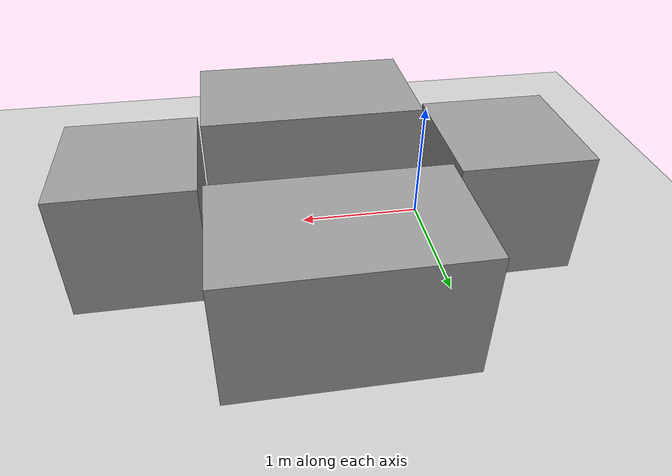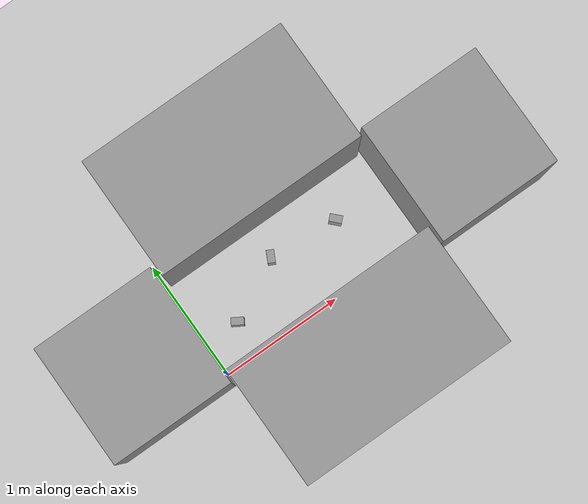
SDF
<sdf version="1.5">
 <world name="default">
  <light name="sun" type="directional">
   <pose>0 0 10 0 -0 0</pose>
   <diffuse>0.8 0.8 0.8 1</diffuse>
   <specular>0.2 0.2 0.2 1</specular>
   <attenuation>
    <range>1000</range>
    <constant>0.9</constant>
    <linear>0.01</linear>
    <quadratic>0.001</quadratic>
   </attenuation>
   <direction>-0.5 0.1 -0.9</direction>
  </light>
  <model name="ground_plane">
   <static>1</static>
   <link name="link">
    <collision name="collision">
     <geometry><plane><normal>0 0 1</normal><size>100 100</size></plane></geometry>
     <surface><friction><ode><mu>100</mu><mu2>50</mu2></ode></friction></surface>
    </collision>
    <visual name="visual">
     <cast_shadows>0</cast_shadows>
     <geometry><plane><normal>0 0 1</normal><size>100 100</size></plane></geometry>
     <material>
      <script><uri>file://media/materials/scripts/gazebo.material</uri><name>Gazebo/Grey</name></script>
     </material>
    </visual>
   </link>
  </model>
  <physics name="default_physics" default="0" type="ode">
   <max_step_size>0.001</max_step_size>
   <real_time_factor>1</real_time_factor>
   <real_time_update_rate>1000</real_time_update_rate>
   <gravity>0 0 -9.8</gravity>
   <magnetic_field>5.5645e-06 2.28758e-05 -4.23884e-05</magnetic_field>
  </physics>
  <scene><ambient>0.4 0.4 0.4 1</ambient><background>0.7 0.7 0.7 1</background><shadows>1</shadows></scene>
  <spherical_coordinates>
   <surface_model>EARTH_WGS84</surface_model>
   <latitude_deg>0</latitude_deg>
   <longitude_deg>0</longitude_deg>
   <elevation>0</elevation>
   <heading_deg>0</heading_deg>
  </spherical_coordinates>
  <model name="unit_box_2">
   <pose>-0.5 0.4 0.5 0 -0 0</pose>
   <link name="link">
    <inertial>
     <mass>1</mass>
     <inertia><ixx>1</ixx><ixy>0</ixy><ixz>0</ixz><iyy>1</iyy><iyz>0</iyz><izz>1</izz></inertia>
    </inertial>
    <collision name="collision"><geometry><box><size>1 1 1</size></box></geometry></collision>
    <visual name="visual">
     <geometry><box><size>1 1 1</size></box></geometry>
     <material>
      <script><uri>file://media/materials/scripts/gazebo.material</uri><name>Gazebo/Grey</name></script>
     </material>
    </visual>
   </link>
  </model>
  <model name="unit_box_3">
   <pose>2.3 0.35 0.5 0 -0 0</pose>
   <link name="link">
    <inertial>
     <mass>1</mass>
     <inertia><ixx>1</ixx><ixy>0</ixy><ixz>0</ixz><iyy>1</iyy><iyz>0</iyz><izz>1</izz></inertia>
    </inertial>
    <collision name="collision"><geometry><box><size>1 1 1</size></box></geometry></collision>
    <visual name="visual">
     <geometry><box><size>1 1 1</size></box></geometry>
     <material>
      <script><uri>file://media/materials/scripts/gazebo.material</uri><name>Gazebo/Grey</name></script>
     </material>
    </visual>
   </link>
  </model>
  <model name="unit_box_4">
   <pose>0.9 -0.5 0.5 0 -0 0</pose>
   <link name="link">
    <inertial>
     <mass>1</mass>
     <inertia><ixx>1</ixx><ixy>0</ixy><ixz>0</ixz><iyy>1</iyy><iyz>0</iyz><izz>1</izz></inertia>
    </inertial>
    <collision name="collision"><geometry><box><size>1.75504 1 1</size></box></geometry></collision>
    <visual name="visual">
     <geometry><box><size>1.75505 1 1</size></box></geometry>
     <material>
      <script><uri>file://media/materials/scripts/gazebo.material</uri><name>Gazebo/Grey</name></script>
     </material>
    </visual>
   </link>
  </model>
  <model name="unit_box_5">
   <pose>0.9 1.3 0.5 0 -0 0</pose>
   <link name="link">
    <inertial>
     <mass>1</mass>
     <inertia><ixx>1</ixx><ixy>0</ixy><ixz>0</ixz><iyy>1</iyy><iyz>0</iyz><izz>1</izz></inertia>
    </inertial>
    <collision name="collision"><geometry><box><size>1.73155 1 1</size></box></geometry></collision>
    <visual name="visual">
     <geometry><box><size>1.73155 1 1</size></box></geometry>
     <material>
      <script><uri>file://media/materials/scripts/gazebo.material</uri><name>Gazebo/Grey</name></script>
     </material>
    </visual>
   </link>
  </model>
  <model name="unit_box_6">
   <pose>0.77493 0.53675 0.100141 0.004286 0.000261 1.11112</pose>
   <link name="link">
    <inertial>
     <mass>1</mass>
     <inertia><ixx>1</ixx><ixy>0</ixy><ixz>0</ixz><iyy>1</iyy><iyz>0</iyz><izz>1</izz></inertia>
    </inertial>
    <collision name="collision"><geometry><box><size>0.1 0.06 0.2</size></box></geometry></collision>
    <visual name="visual">
     <geometry><box><size>0.1 0.06 0.2</size></box></geometry>
     <material>
      <script><uri>file://media/materials/scripts/gazebo.material</uri><name>Gazebo/Grey</name></script>
     </material>
    </visual>
   </link>
  </model>
  <model name="unit_box_6_clone">
   <pose>1.34025 0.487112 0.100189 0.002707 -0.00237 -0.804323</pose>
   <link name="link">
    <inertial>
     <mass>1</mass>
     <inertia><ixx>1</ixx><ixy>0</ixy><ixz>0</ixz><iyy>1</iyy><iyz>0</iyz><izz>1</izz></inertia>
    </inertial>
    <collision name="collision"><geometry><box><size>0.1 0.06 0.2</size></box></geometry></collision>
    <visual name="visual">
     <geometry><box><size>0.1 0.06 0.2</size></box></geometry>
     <material>
      <script><uri>file://media/materials/scripts/gazebo.material</uri><name>Gazebo/Grey</name></script>
     </material>
    </visual>
   </link>
  </model>
  <model name="unit_box_6_clone_0">
   <pose>0.289836 0.282511 0.10016 -0.001438 0.002342 -0.544559</pose>
   <link name="link">
    <inertial>
     <mass>1</mass>
     <inertia><ixx>1</ixx><ixy>0</ixy><ixz>0</ixz><iyy>1</iyy><iyz>0</iyz><izz>1</izz></inertia>
    </inertial>
    <collision name="collision"><geometry><box><size>0.1 0.06 0.2</size></box></geometry></collision>
    <visual name="visual">
     <geometry><box><size>0.1 0.06 0.2</size></box></geometry>
     <material>
      <script><uri>file://media/materials/scripts/gazebo.material</uri><name>Gazebo/Grey</name></script>
     </material>
    </visual>
   </link>
  </model>
 </world>
</sdf>
